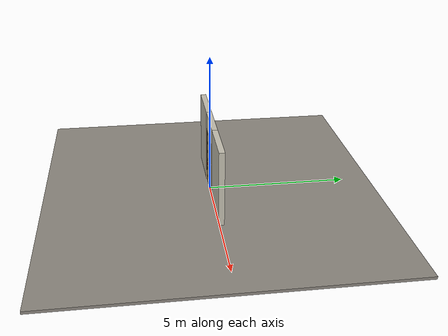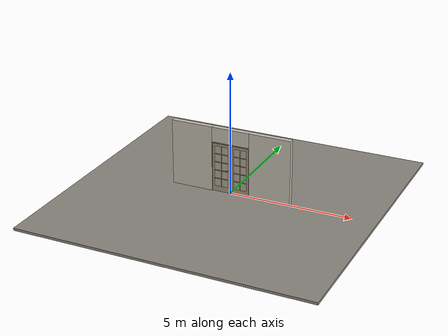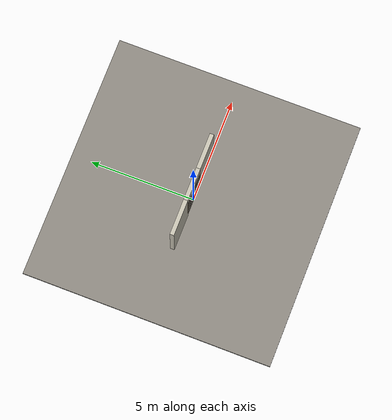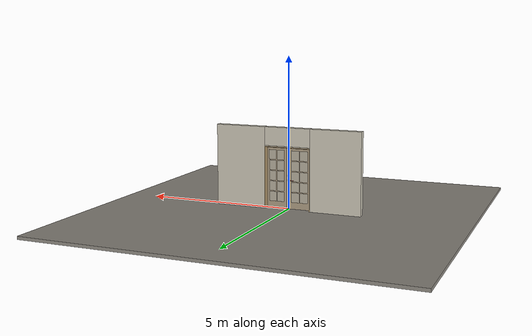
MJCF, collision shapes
<?xml version="1.0" ?>
<mujoco model="db0792_swing_double_minimal">
  <compiler angle="radian" meshdir="../../hardware" texturedir="../../textures" autolimits="true" inertiafromgeom="false"/>
  <option timestep="0.002" integrator="implicitfast" cone="elliptic" impratio="10" noslip_iterations="3">
    <flag multiccd="enable"/>
  </option>
  <size memory="16M"/>
  <default>
    <geom condim="4" solref="0.005 1" solimp="0.95 0.99 0.001"/>
    <joint solreflimit="0.005 1" solimplimit="0.95 0.99 0.001"/>
    <tendon solreflimit="0.005 1"/>
    <equality solref="0.002 1"/>
  </default>
  <visual>
    <headlight ambient="0.4 0.4 0.4" diffuse="0.7 0.7 0.7" specular="0.2 0.2 0.2"/>
    <quality shadowsize="4096"/>
    <map znear="0.01" zfar="60"/>
  </visual>
  <asset>
    <mesh name="lever_9f02b544cf" file="lever_9f02b544cf.obj"/>
    <material name="mat_floor" rgba="0.55 0.53 0.5 1" specular="0.2" shininess="0.15" reflectance="0"/>
    <material name="mat_wall" rgba="0.78 0.76 0.7 1" specular="0.2" shininess="0.1" reflectance="0"/>
    <material name="mat_leaf_a" rgba="0.66 0.6 0.5 1" specular="0.2" shininess="0.45" reflectance="0"/>
    <material name="mat_glass" rgba="0.85 0.92 0.95 0.25" specular="0.2" shininess="0.95" reflectance="0.1"/>
    <material name="mat_hinge" rgba="0.65 0.66 0.68 1" specular="0.74" shininess="0.5" reflectance="0.36"/>
    <material name="mat_op_nickel_satin" rgba="0.72 0.7 0.66 1" specular="0.8" shininess="0.65" reflectance="0.4"/>
    <material name="mat_trim" rgba="0.85 0.66 0.3 1" specular="0.8" shininess="0.75" reflectance="0.4"/>
    <material name="mat_bolt" rgba="0.85 0.66 0.3 1" specular="0.8" shininess="0.75" reflectance="0.4"/>
    <material name="mat_deadbolt" rgba="0.85 0.66 0.3 1" specular="0.8" shininess="0.75" reflectance="0.4"/>
    <material name="mat_stop" rgba="0.9 0.9 0.92 1" specular="0.8" shininess="0.9" reflectance="0.4"/>
    <material name="mat_leaf_b" rgba="0.66 0.6 0.5 1" specular="0.2" shininess="0.45" reflectance="0"/>
    <material name="mat_frame" rgba="0.82 0.7 0.5 1" specular="0.2" shininess="0.45" reflectance="0"/>
    <texture name="skybox" type="skybox" builtin="gradient" rgb1="0.6 0.7 0.85" rgb2="0.9 0.92 0.95" width="256" height="256"/>
  </asset>
  <worldbody>
    <light name="sun" pos="1.5 -2.5 4" dir="-0.3 0.5 -0.8" directional="true" diffuse="0.8 0.8 0.8" specular="0.3 0.3 0.3" castshadow="true"/>
    <light name="fill" pos="-1.5 2.5 3" dir="0.3 -0.5 -0.7" directional="true" diffuse="0.35 0.35 0.4" castshadow="false"/>
    <camera name="robot_view" pos="0 -2.484187 1.734312" xyaxes="1 0 0 0 0.26963 0.962964" fovy="52"/>
    <camera name="far_view" pos="0 2.600187 1.734312" xyaxes="-1 0 0 0 -0.26963 0.962964" fovy="52"/>
    <camera name="iso" pos="-1.932062 -2.077438 2.141063" xyaxes="0.741536 -0.670913 0 0.242917 0.268487 0.932151" fovy="46"/>
    <camera name="detail_handle" pos="0.0085 -0.877 1.245" xyaxes="0.97561 0.219512 0 -0.070934 0.315262 0.94635" fovy="38"/>
    <geom name="floor" type="box" size="6 6 0.05" pos="0 0 -0.05" material="mat_floor" group="0" contype="1" conaffinity="1" friction="0.8 0.005 0.0001" density="2400"/>
    <geom name="wall_left" type="box" size="0.85725 0.1 1.35" pos="-1.64275 0.058 1.35" material="mat_wall" group="0" contype="1" conaffinity="1" friction="0.6 0.005 0.0001" density="800"/>
    <geom name="wall_right" type="box" size="0.85725 0.1 1.35" pos="1.64275 0.058 1.35" material="mat_wall" group="0" contype="1" conaffinity="1" friction="0.6 0.005 0.0001" density="800"/>
    <geom name="wall_header" type="box" size="0.7855 0.1 0.303" pos="0 0.058 2.397" material="mat_wall" group="0" contype="1" conaffinity="1" friction="0.6 0.005 0.0001" density="800"/>
    <geom name="jamb_l" type="box" size="0.0095 0.1 1.0225" pos="-0.776 0.058 1.0225" material="mat_frame" group="0" contype="1" conaffinity="1" friction="0.6 0.005 0.0001" density="300"/>
    <geom name="jamb_r" type="box" size="0.0095 0.1 1.0225" pos="0.776 0.058 1.0225" material="mat_frame" group="0" contype="1" conaffinity="1" friction="0.6 0.005 0.0001" density="300"/>
    <geom name="jamb_head" type="box" size="0.7855 0.1 0.0095" pos="0 0.058 2.0545" material="mat_frame" group="0" contype="1" conaffinity="1" friction="0.6 0.005 0.0001" density="300"/>
    <geom name="head_stud" type="box" size="0.7855 0.1 0.015" pos="0 0.058 2.079" material="mat_wall" group="0" contype="1" conaffinity="1" friction="0.6 0.005 0.0001" density="500"/>
    <geom name="stop_l" type="box" size="0.015 0.006 1.0225" pos="-0.7515 0.0285 1.0225" material="mat_frame" group="0" contype="1" conaffinity="1" friction="0.6 0.005 0.0001" density="300"/>
    <geom name="stop_r" type="box" size="0.015 0.006 1.0225" pos="0.7515 0.0285 1.0225" material="mat_frame" group="0" contype="1" conaffinity="1" friction="0.6 0.005 0.0001" density="300"/>
    <geom name="stop_head" type="box" size="0.7665 0.006 0.015" pos="0 0.0285 2.03" material="mat_frame" group="0" contype="1" conaffinity="1" friction="0.6 0.005 0.0001" density="300"/>
    <site name="approach_point" pos="0 -1.5 0" quat="1 0 0 0" size="0.05" rgba="0.2 0.9 0.2 0.5" group="4"/>
    <site name="goal_point" pos="0 1.5 0" quat="1 0 0 0" size="0.05" rgba="0.2 0.9 0.2 0.5" group="4"/>
    <site name="door_plane_center" pos="0 0 1.0225" quat="1 0 0 0" size="0.02" rgba="0.2 0.9 0.2 0.5" group="4"/>
    <site name="approach_point_2" pos="0 -1.5 0" quat="1 0 0 0" size="0.05" rgba="0.2 0.9 0.2 0.5" group="4"/>
    <site name="goal_point_2" pos="0 1.5 0" quat="1 0 0 0" size="0.05" rgba="0.2 0.9 0.2 0.5" group="4"/>
    <site name="door_plane_center_2" pos="0 0 1.0225" quat="1 0 0 0" size="0.02" rgba="0.2 0.9 0.2 0.5" group="4"/>
    <site name="approach_point_3" pos="0 -1.5 0" quat="1 0 0 0" size="0.05" rgba="0.2 0.9 0.2 0.5" group="4"/>
    <site name="goal_point_3" pos="0 1.5 0" quat="1 0 0 0" size="0.05" rgba="0.2 0.9 0.2 0.5" group="4"/>
    <site name="door_plane_center_3" pos="0 0 1.0225" quat="1 0 0 0" size="0.02" rgba="0.2 0.9 0.2 0.5" group="4"/>
    <body name="leaf_a" pos="-0.7665 0 0">
      <inertial pos="0.384 0 1.025205" mass="26.075777" quat="-0.5 0.5 0.5 0.5" diaginertia="1.264302455 8.968549297 10.224435871"/>
      <joint name="leaf_a_hinge" type="hinge" axis="0 0 -1" pos="0.003 -0.029 0" limited="true" range="0 1.658063" solreflimit="0.02 1" damping="0.173726" frictionloss="1.075092" armature="0.02"/>
      <geom name="leaf_a_slab" type="box" size="0.381 0.022 1.016" pos="0.384 0 1.025" material="mat_leaf_a" group="0" contype="1" conaffinity="1" friction="0.35 0.005 0.0001" density="1"/>
      <geom name="leaf_a_glass_0" type="box" size="0.138 0.0228 0.158688" pos="0.231 0 0.391208" material="mat_glass" group="1" contype="0" conaffinity="0" density="1"/>
      <geom name="leaf_a_glass_1" type="box" size="0.138 0.0228 0.158688" pos="0.537 0 0.391208" material="mat_glass" group="1" contype="0" conaffinity="0" density="1"/>
      <geom name="leaf_a_glass_2" type="box" size="0.138 0.0228 0.158688" pos="0.231 0 0.738584" material="mat_glass" group="1" contype="0" conaffinity="0" density="1"/>
      <geom name="leaf_a_glass_3" type="box" size="0.138 0.0228 0.158688" pos="0.537 0 0.738584" material="mat_glass" group="1" contype="0" conaffinity="0" density="1"/>
      <geom name="leaf_a_glass_4" type="box" size="0.138 0.0228 0.158688" pos="0.231 0 1.08596" material="mat_glass" group="1" contype="0" conaffinity="0" density="1"/>
      <geom name="leaf_a_glass_5" type="box" size="0.138 0.0228 0.158688" pos="0.537 0 1.08596" material="mat_glass" group="1" contype="0" conaffinity="0" density="1"/>
      <geom name="leaf_a_glass_6" type="box" size="0.138 0.0228 0.158688" pos="0.231 0 1.433336" material="mat_glass" group="1" contype="0" conaffinity="0" density="1"/>
      <geom name="leaf_a_glass_7" type="box" size="0.138 0.0228 0.158688" pos="0.537 0 1.433336" material="mat_glass" group="1" contype="0" conaffinity="0" density="1"/>
      <geom name="leaf_a_glass_8" type="box" size="0.138 0.0228 0.158688" pos="0.231 0 1.780712" material="mat_glass" group="1" contype="0" conaffinity="0" density="1"/>
      <geom name="leaf_a_glass_9" type="box" size="0.138 0.0228 0.158688" pos="0.537 0 1.780712" material="mat_glass" group="1" contype="0" conaffinity="0" density="1"/>
      <site name="leaf_a_edge_mid" pos="0.765 0 1.016" quat="1 0 0 0" size="0.02" rgba="0.2 0.9 0.2 0.5" group="4"/>
      <body name="leaf_a_handle" pos="0.695 0 0.965">
        <inertial pos="-0.030188 0 0" mass="0.924918" quat="0.707107 0 0 -0.707107" diaginertia="0.001725188 0.003587995 0.005135939"/>
        <joint name="leaf_a_handle_hinge" type="hinge" axis="0 -1 0" limited="true" range="0 0.96" damping="0.245624" frictionloss="0.048" stiffness="1.2" springref="-0.458333" armature="0.01"/>
        <geom name="leaf_a_handle_lever_n" type="mesh" mesh="lever_9f02b544cf" pos="0 -0.022 0" quat="0.707107 0.707107 0 0" material="mat_op_nickel_satin" group="1" contype="0" conaffinity="0" density="3000"/>
        <geom name="leaf_a_handle_lever_col_n" type="capsule" size="0.0095 0.053" pos="-0.0625 -0.077 0" quat="0.707107 0 -0.707107 0" material="mat_op_nickel_satin" group="3" contype="1" conaffinity="1" rgba="0.8 0.3 0.3 0.25" friction="0.7 0.01 0.0001" density="3000"/>
        <geom name="leaf_a_handle_hub_col_n" type="cylinder" size="0.012 0.022" pos="0 -0.052 0" quat="0.707107 -0.707107 0 0" material="mat_op_nickel_satin" group="3" contype="1" conaffinity="1" rgba="0.8 0.3 0.3 0.25" friction="0.6 0.005 0.0001" density="3000"/>
        <geom name="leaf_a_handle_lever_p" type="mesh" mesh="lever_9f02b544cf" pos="0 0.022 0" quat="-0.707107 0.707107 0 0" material="mat_op_nickel_satin" group="1" contype="0" conaffinity="0" density="3000"/>
        <geom name="leaf_a_handle_lever_col_p" type="capsule" size="0.0095 0.053" pos="-0.0625 0.077 0" quat="0.707107 0 -0.707107 0" material="mat_op_nickel_satin" group="3" contype="1" conaffinity="1" rgba="0.8 0.3 0.3 0.25" friction="0.7 0.01 0.0001" density="3000"/>
        <geom name="leaf_a_handle_hub_col_p" type="cylinder" size="0.012 0.022" pos="0 0.052 0" quat="0.707107 -0.707107 0 0" material="mat_op_nickel_satin" group="3" contype="1" conaffinity="1" rgba="0.8 0.3 0.3 0.25" friction="0.6 0.005 0.0001" density="3000"/>
        <site name="leaf_a_handle_grip_n" pos="-0.1 -0.077 0" quat="1 0 0 0" size="0.012" rgba="0.2 0.9 0.2 0.5" group="4"/>
        <site name="leaf_a_handle_grip_p" pos="-0.1 0.077 0" quat="1 0 0 0" size="0.012" rgba="0.2 0.9 0.2 0.5" group="4"/>
      </body>
      <body name="leaf_a_latch_bolt" pos="0.765 0 0.965">
        <inertial pos="-0.00865 0 0" mass="0.041419" quat="0.92388 -0.382683 0 0" diaginertia="0.000000798 0.000005598 0.000005598"/>
        <joint name="leaf_a_latch_bolt_slide" type="slide" axis="-1 0 0" limited="true" range="0 0.0127" damping="2" frictionloss="0.3" stiffness="300" springref="-0.008333" armature="0.1"/>
        <geom name="leaf_a_latch_bolt_capsule" type="capsule" size="0.00635 0.015" pos="-0.00865 0 0" quat="0.707107 0 0.707107 0" material="mat_bolt" group="0" contype="1" conaffinity="1" friction="0.2 0.005 0.0001" density="8500"/>
      </body>
    </body>
    <body name="leaf_b" pos="0.7665 0 0">
      <inertial pos="-0.354173 0 1.025182" mass="25.035448" quat="0.5 0.499999 0.500001 -0.5" diaginertia="1.032084659 8.611535632 9.635540188"/>
      <joint name="leaf_b_hinge" type="hinge" axis="0 0 1" pos="-0.003 -0.029 0" limited="true" range="0 0.001" solreflimit="0.02 1" damping="0.173726" frictionloss="1.075092" armature="0.02"/>
      <geom name="leaf_b_edge_965_wall_n" type="box" size="0.03 0.007075 0.0167" pos="-0.735 0.014925 0.965" material="mat_leaf_b" group="0" contype="1" conaffinity="1" friction="0.6 0.005 0.0001" density="1"/>
      <geom name="leaf_b_edge_965_wall_p" type="box" size="0.03 0.008 0.0167" pos="-0.735 -0.01585 0.965" material="mat_leaf_b" group="0" contype="1" conaffinity="1" friction="0.6 0.005 0.0001" density="1"/>
      <geom name="leaf_b_edge_965_ramp" type="box" size="0.03 0.01649 0.0167" pos="-0.730861 -0.026388 0.965" quat="0.977148 0 0 0.212558" material="mat_leaf_b" group="0" contype="1" conaffinity="1" friction="0.12 0.005 0.0001" density="1"/>
      <geom name="leaf_b_edge_965_back" type="box" size="0.02165 0.00785 0.0167" pos="-0.72665 0 0.965" material="mat_leaf_b" group="0" contype="1" conaffinity="1" friction="0.6 0.005 0.0001" density="1"/>
      <geom name="leaf_b_edge_1105_wall_n" type="box" size="0.03 0.00625 0.0155" pos="-0.735 0.01575 1.105" material="mat_leaf_b" group="0" contype="1" conaffinity="1" friction="0.6 0.005 0.0001" density="1"/>
      <geom name="leaf_b_edge_1105_wall_p" type="box" size="0.03 0.00625 0.0155" pos="-0.735 -0.01575 1.105" material="mat_leaf_b" group="0" contype="1" conaffinity="1" friction="0.6 0.005 0.0001" density="1"/>
      <geom name="leaf_b_edge_1105_back" type="box" size="0.0153 0.0095 0.0155" pos="-0.7203 0 1.105" material="mat_leaf_b" group="0" contype="1" conaffinity="1" friction="0.6 0.005 0.0001" density="1"/>
      <geom name="leaf_b_edge_seg_0" type="box" size="0.03 0.022 0.46965" pos="-0.735 0 0.47865" material="mat_leaf_b" group="0" contype="1" conaffinity="1" friction="0.6 0.005 0.0001" density="1"/>
      <geom name="leaf_b_edge_seg_1" type="box" size="0.03 0.022 0.0539" pos="-0.735 0 1.0356" material="mat_leaf_b" group="0" contype="1" conaffinity="1" friction="0.6 0.005 0.0001" density="1"/>
      <geom name="leaf_b_edge_seg_2" type="box" size="0.03 0.022 0.46025" pos="-0.735 0 1.58075" material="mat_leaf_b" group="0" contype="1" conaffinity="1" friction="0.6 0.005 0.0001" density="1"/>
      <geom name="leaf_b_slab" type="box" size="0.351 0.022 1.016" pos="-0.354 0 1.025" material="mat_leaf_b" group="0" contype="1" conaffinity="1" friction="0.35 0.005 0.0001" density="1"/>
      <geom name="leaf_b_glass_0" type="box" size="0.123 0.0228 0.158688" pos="-0.216 0 0.391208" material="mat_glass" group="1" contype="0" conaffinity="0" density="1"/>
      <geom name="leaf_b_glass_1" type="box" size="0.123 0.0228 0.158688" pos="-0.492 0 0.391208" material="mat_glass" group="1" contype="0" conaffinity="0" density="1"/>
      <geom name="leaf_b_glass_2" type="box" size="0.123 0.0228 0.158688" pos="-0.216 0 0.738584" material="mat_glass" group="1" contype="0" conaffinity="0" density="1"/>
      <geom name="leaf_b_glass_3" type="box" size="0.123 0.0228 0.158688" pos="-0.492 0 0.738584" material="mat_glass" group="1" contype="0" conaffinity="0" density="1"/>
      <geom name="leaf_b_glass_4" type="box" size="0.123 0.0228 0.158688" pos="-0.216 0 1.08596" material="mat_glass" group="1" contype="0" conaffinity="0" density="1"/>
      <geom name="leaf_b_glass_5" type="box" size="0.123 0.0228 0.158688" pos="-0.492 0 1.08596" material="mat_glass" group="1" contype="0" conaffinity="0" density="1"/>
      <geom name="leaf_b_glass_6" type="box" size="0.123 0.0228 0.158688" pos="-0.216 0 1.433336" material="mat_glass" group="1" contype="0" conaffinity="0" density="1"/>
      <geom name="leaf_b_glass_7" type="box" size="0.123 0.0228 0.158688" pos="-0.492 0 1.433336" material="mat_glass" group="1" contype="0" conaffinity="0" density="1"/>
      <geom name="leaf_b_glass_8" type="box" size="0.123 0.0228 0.158688" pos="-0.216 0 1.780712" material="mat_glass" group="1" contype="0" conaffinity="0" density="1"/>
      <geom name="leaf_b_glass_9" type="box" size="0.123 0.0228 0.158688" pos="-0.492 0 1.780712" material="mat_glass" group="1" contype="0" conaffinity="0" density="1"/>
      <site name="leaf_b_edge_mid" pos="-0.765 0 1.016" quat="1 0 0 0" size="0.02" rgba="0.2 0.9 0.2 0.5" group="4"/>
    </body>
  </worldbody>
  <tendon>
    <fixed name="leaf_a_latch_bolt_coupling" limited="true" range="0 10">
      <joint joint="leaf_a_latch_bolt_slide" coef="1"/>
      <joint joint="leaf_a_handle_hinge" coef="-0.013956"/>
    </fixed>
  </tendon>
  <sensor>
    <jointpos name="leaf_a_hinge_pos" joint="leaf_a_hinge"/>
    <jointvel name="leaf_a_hinge_vel" joint="leaf_a_hinge"/>
    <jointpos name="leaf_a_handle_hinge_pos" joint="leaf_a_handle_hinge"/>
    <jointvel name="leaf_a_handle_hinge_vel" joint="leaf_a_handle_hinge"/>
    <jointpos name="leaf_a_latch_bolt_slide_pos" joint="leaf_a_latch_bolt_slide"/>
    <jointvel name="leaf_a_latch_bolt_slide_vel" joint="leaf_a_latch_bolt_slide"/>
    <jointpos name="leaf_b_hinge_pos" joint="leaf_b_hinge"/>
    <jointvel name="leaf_b_hinge_vel" joint="leaf_b_hinge"/>
  </sensor>
</mujoco>
